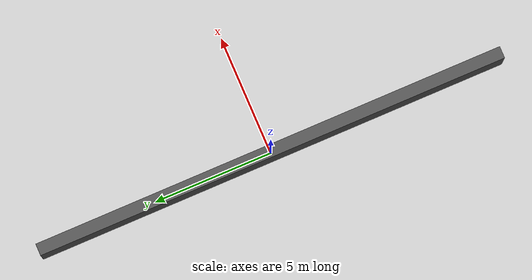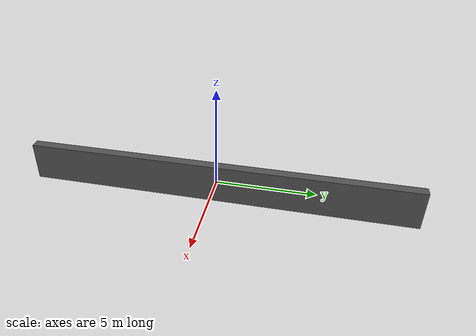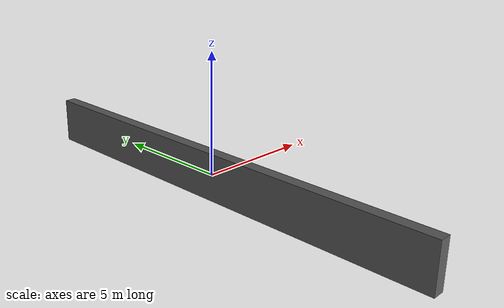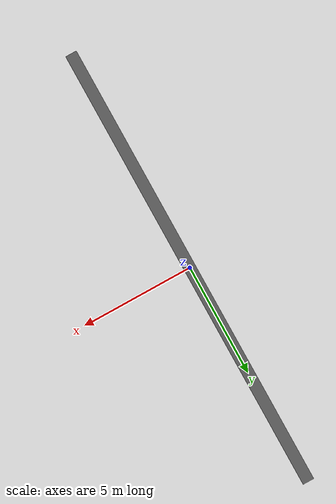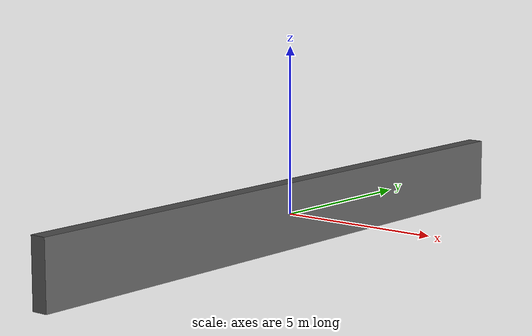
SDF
<?xml version="1.0" ?>
<sdf version="1.7">

    <model name='wall'>
        <static>true</static>
        <pose>0 0 0 0 0 0</pose><!--pose relative to the world-->
        <link name='box'>
            <visual name='visual'>
                <geometry>
                    <box>
                        <size>0.5 20.0 2.0</size>
                    </box>
                </geometry>
                <!--let's add color to our link-->
                <material>
                    <ambient>0.35 0.35 0.35 1</ambient>
                    <diffuse>0.35 0.35 0.35 1</diffuse>
                    <specular>0.35 0.35 0.35 1</specular>
                </material>
            </visual>
            <collision name='collision'>
                <geometry>
                    <box>
                        <size>0.5 20.0 2.0</size>
                    </box>
                </geometry>
            </collision>
        </link>
    </model>

</sdf>
